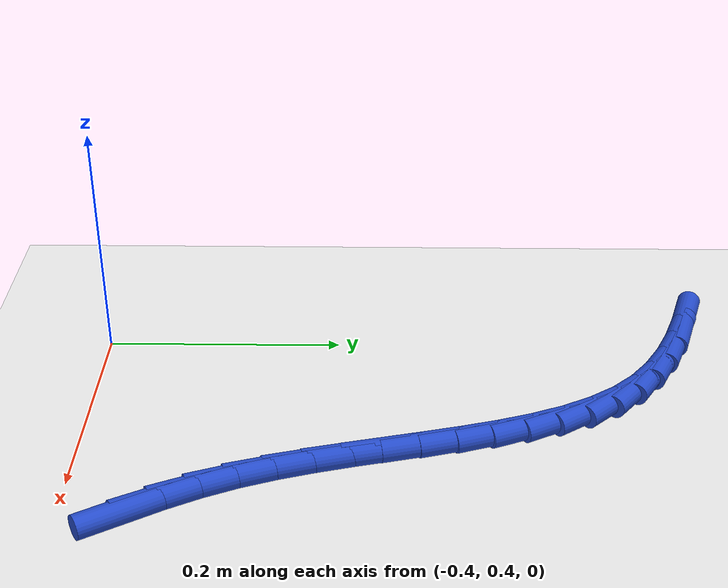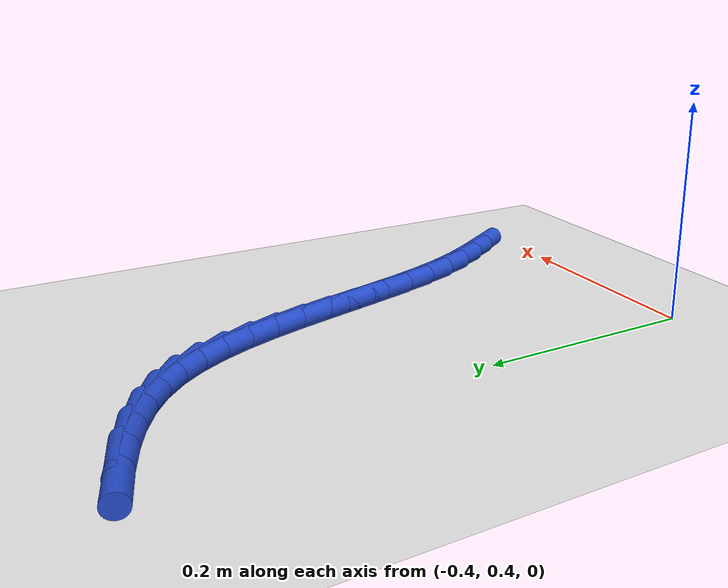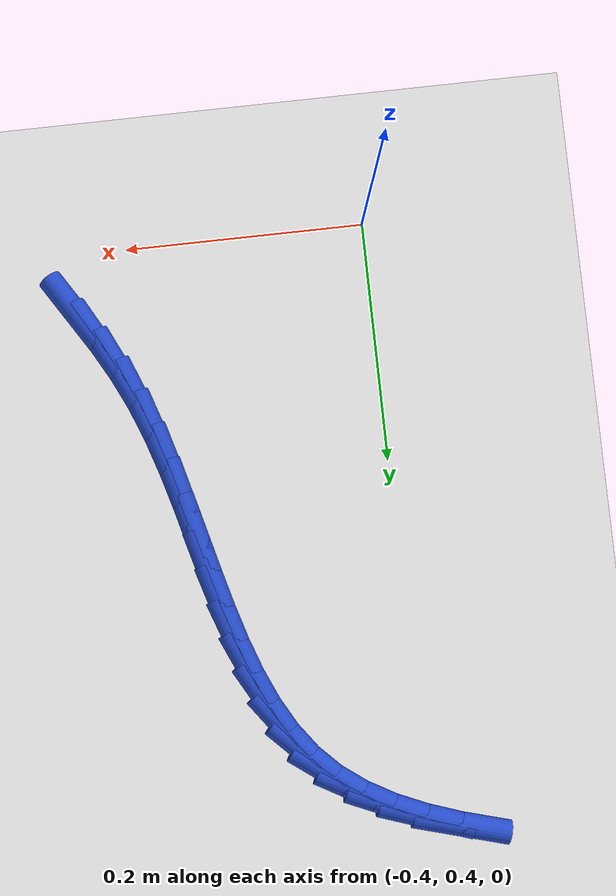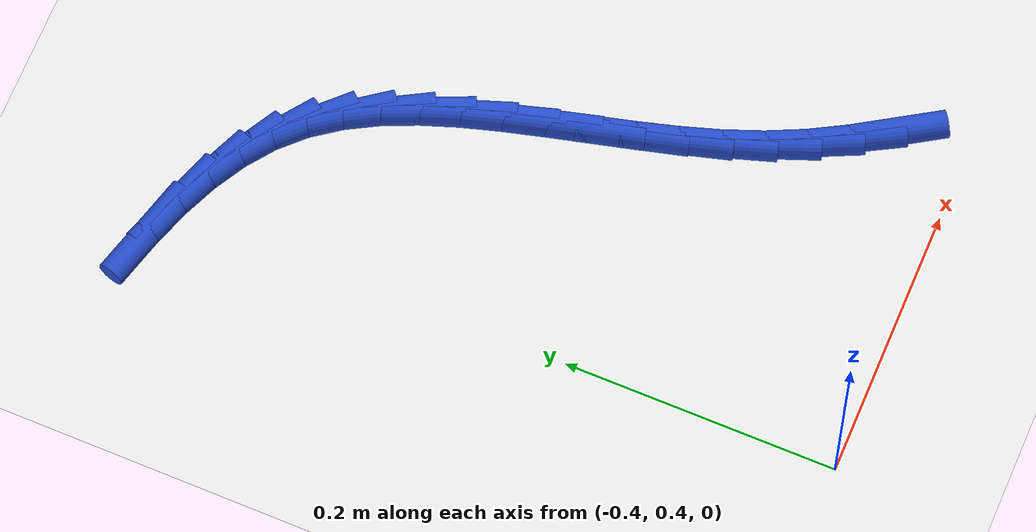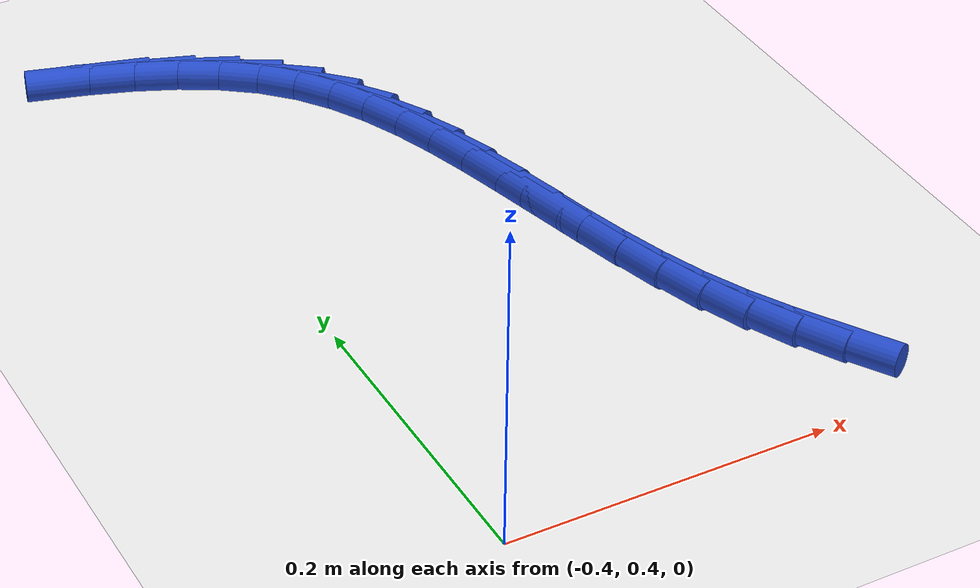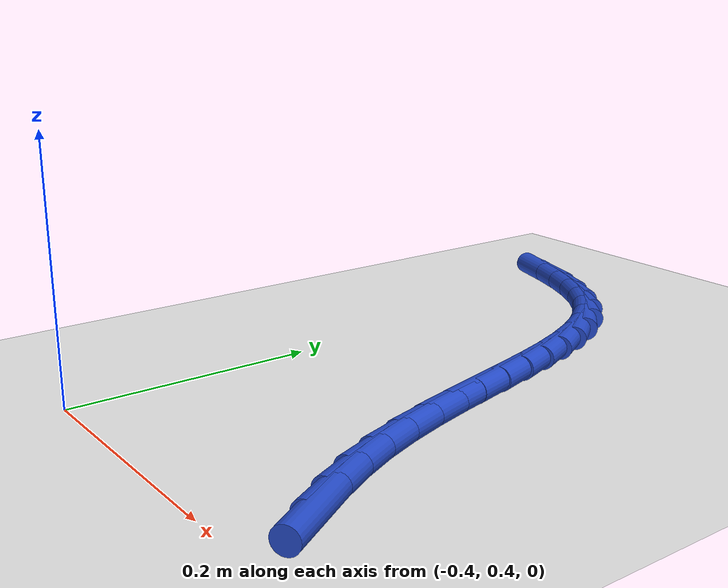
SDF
<sdf version="1.6">
 <world name="default">
  <model name="ground_plane">
   <static>1</static>
   <link name="link">
    <collision name="collision">
     <geometry><plane><normal>0 0 1</normal><size>100 100</size></plane></geometry>
     <surface><friction><ode><mu>100</mu><mu2>50</mu2></ode></friction></surface>
    </collision>
    <visual name="visual">
     <cast_shadows>0</cast_shadows>
     <geometry><plane><normal>0 0 1</normal><size>100 100</size></plane></geometry>
     <material>
      <script><uri>file://media/materials/scripts/gazebo.material</uri><name>Gazebo/WhiteGlow</name></script>
     </material>
    </visual>
   </link>
  </model>
  <model name="line">
   <link name="link_17">
    <pose>-0.15675739642516137 0.45418025724158056 0.01 0 1.57 -1.0133619687625222</pose>
    <collision name="collision">
     <geometry><cylinder><radius>0.01</radius><length>0.08</length></cylinder></geometry>
    </collision>
    <visual name="visual">
     <material>
      <script><name>Gazebo/Blue</name><uri>file://media/materials/scripts/gazebo.material</uri></script>
     </material>
     <geometry><cylinder><radius>0.01</radius><length>0.08</length></cylinder></geometry>
    </visual>
   </link>
   <link name="link_18">
    <pose>-0.17239241803405053 0.4792612552451187 0.01 0 1.57 -1.0668688279705607</pose>
    <collision name="collision">
     <geometry><cylinder><radius>0.01</radius><length>0.08</length></cylinder></geometry>
    </collision>
    <visual name="visual">
     <material>
      <script><name>Gazebo/Blue</name><uri>file://media/materials/scripts/gazebo.material</uri></script>
     </material>
     <geometry><cylinder><radius>0.01</radius><length>0.08</length></cylinder></geometry>
    </visual>
   </link>
   <link name="link_19">
    <pose>-0.1867395980737762 0.5052801860688079 0.01 0 1.57 -1.134840986003388</pose>
    <collision name="collision">
     <geometry><cylinder><radius>0.01</radius><length>0.08</length></cylinder></geometry>
    </collision>
    <visual name="visual">
     <material>
      <script><name>Gazebo/Blue</name><uri>file://media/materials/scripts/gazebo.material</uri></script>
     </material>
     <geometry><cylinder><radius>0.01</radius><length>0.08</length></cylinder></geometry>
    </visual>
   </link>
   <link name="link_20">
    <pose>-0.1994030000032319 0.5324636885692487 0.01 0 1.57 -1.2069468422055816</pose>
    <collision name="collision">
     <geometry><cylinder><radius>0.01</radius><length>0.08</length></cylinder></geometry>
    </collision>
    <visual name="visual">
     <material>
      <script><name>Gazebo/Blue</name><uri>file://media/materials/scripts/gazebo.material</uri></script>
     </material>
     <geometry><cylinder><radius>0.01</radius><length>0.08</length></cylinder></geometry>
    </visual>
   </link>
   <link name="link_21">
    <pose>-0.21022101664508128 0.5608720378528336 0.01 0 1.57 -1.2625666835470688</pose>
    <collision name="collision">
     <geometry><cylinder><radius>0.01</radius><length>0.08</length></cylinder></geometry>
    </collision>
    <visual name="visual">
     <material>
      <script><name>Gazebo/Blue</name><uri>file://media/materials/scripts/gazebo.material</uri></script>
     </material>
     <geometry><cylinder><radius>0.01</radius><length>0.08</length></cylinder></geometry>
    </visual>
   </link>
   <link name="link_22">
    <pose>-0.2195562369697719 0.5901933523504638 0.01 0 1.57 -1.3002098207081696</pose>
    <collision name="collision">
     <geometry><cylinder><radius>0.01</radius><length>0.08</length></cylinder></geometry>
    </collision>
    <visual name="visual">
     <material>
      <script><name>Gazebo/Blue</name><uri>file://media/materials/scripts/gazebo.material</uri></script>
     </material>
     <geometry><cylinder><radius>0.01</radius><length>0.08</length></cylinder></geometry>
    </visual>
   </link>
   <link name="link_23">
    <pose>-0.22784239092838027 0.620065243462506 0.01 0 1.57 -1.320945639653934</pose>
    <collision name="collision">
     <geometry><cylinder><radius>0.01</radius><length>0.08</length></cylinder></geometry>
    </collision>
    <visual name="visual">
     <material>
      <script><name>Gazebo/Blue</name><uri>file://media/materials/scripts/gazebo.material</uri></script>
     </material>
     <geometry><cylinder><radius>0.01</radius><length>0.08</length></cylinder></geometry>
    </visual>
   </link>
   <link name="link_24">
    <pose>-0.23551320847198332 0.650125322589328 0.01 0 1.57 -1.3252590220329108</pose>
    <collision name="collision">
     <geometry><cylinder><radius>0.01</radius><length>0.08</length></cylinder></geometry>
    </collision>
    <visual name="visual">
     <material>
      <script><name>Gazebo/Blue</name><uri>file://media/materials/scripts/gazebo.material</uri></script>
     </material>
     <geometry><cylinder><radius>0.01</radius><length>0.08</length></cylinder></geometry>
    </visual>
   </link>
   <link name="link_25">
    <pose>-0.24300241955165755 0.6800112011312963 0.01 0 1.57 -1.3129042982043717</pose>
    <collision name="collision">
     <geometry><cylinder><radius>0.01</radius><length>0.08</length></cylinder></geometry>
    </collision>
    <visual name="visual">
     <material>
      <script><name>Gazebo/Blue</name><uri>file://media/materials/scripts/gazebo.material</uri></script>
     </material>
     <geometry><cylinder><radius>0.01</radius><length>0.08</length></cylinder></geometry>
    </visual>
   </link>
   <link name="link_26">
    <pose>-0.2507437541184798 0.7093604904887786 0.01 0 1.57 -1.282822759139228</pose>
    <collision name="collision">
     <geometry><cylinder><radius>0.01</radius><length>0.08</length></cylinder></geometry>
    </collision>
    <visual name="visual">
     <material>
      <script><name>Gazebo/Blue</name><uri>file://media/materials/scripts/gazebo.material</uri></script>
     </material>
     <geometry><cylinder><radius>0.01</radius><length>0.08</length></cylinder></geometry>
    </visual>
   </link>
   <link name="link_27">
    <pose>-0.25917094212352665 0.7378108020621414 0.01 0 1.57 -1.2331178961608336</pose>
    <collision name="collision">
     <geometry><cylinder><radius>0.01</radius><length>0.08</length></cylinder></geometry>
    </collision>
    <visual name="visual">
     <material>
      <script><name>Gazebo/Blue</name><uri>file://media/materials/scripts/gazebo.material</uri></script>
     </material>
     <geometry><cylinder><radius>0.01</radius><length>0.08</length></cylinder></geometry>
    </visual>
   </link>
   <link name="link_28">
    <pose>-0.268717713517875 0.7649997472517527 0.01 0 1.57 -1.1611696343551625</pose>
    <collision name="collision">
     <geometry><cylinder><radius>0.01</radius><length>0.08</length></cylinder></geometry>
    </collision>
    <visual name="visual">
     <material>
      <script><name>Gazebo/Blue</name><uri>file://media/materials/scripts/gazebo.material</uri></script>
     </material>
     <geometry><cylinder><radius>0.01</radius><length>0.08</length></cylinder></geometry>
    </visual>
   </link>
   <link name="link_29">
    <pose>-0.27981779825260134 0.7905649374579788 0.01 0 1.57 -1.0640979018220516</pose>
    <collision name="collision">
     <geometry><cylinder><radius>0.01</radius><length>0.08</length></cylinder></geometry>
    </collision>
    <visual name="visual">
     <material>
      <script><name>Gazebo/Blue</name><uri>file://media/materials/scripts/gazebo.material</uri></script>
     </material>
     <geometry><cylinder><radius>0.01</radius><length>0.08</length></cylinder></geometry>
    </visual>
   </link>
   <link name="link_30">
    <pose>-0.2929049262787825 0.8141439840811872 0.01 0 1.57 -0.9399228599757675</pose>
    <collision name="collision">
     <geometry><cylinder><radius>0.01</radius><length>0.08</length></cylinder></geometry>
    </collision>
    <visual name="visual">
     <material>
      <script><name>Gazebo/Blue</name><uri>file://media/materials/scripts/gazebo.material</uri></script>
     </material>
     <geometry><cylinder><radius>0.01</radius><length>0.08</length></cylinder></geometry>
    </visual>
   </link>
   <link name="link_31">
    <pose>-0.3084128275474951 0.8353744985217452 0.01 0 1.57 -0.7903698727182531</pose>
    <collision name="collision">
     <geometry><cylinder><radius>0.01</radius><length>0.08</length></cylinder></geometry>
    </collision>
    <visual name="visual">
     <material>
      <script><name>Gazebo/Blue</name><uri>file://media/materials/scripts/gazebo.material</uri></script>
     </material>
     <geometry><cylinder><radius>0.01</radius><length>0.08</length></cylinder></geometry>
    </visual>
   </link>
   <link name="link_32">
    <pose>-0.3267611357591894 0.8539061647568917 0.01 0 1.57 -0.6399078186234167</pose>
    <collision name="collision">
     <geometry><cylinder><radius>0.01</radius><length>0.08</length></cylinder></geometry>
    </collision>
    <visual name="visual">
     <material>
      <script><name>Gazebo/Blue</name><uri>file://media/materials/scripts/gazebo.material</uri></script>
     </material>
     <geometry><cylinder><radius>0.01</radius><length>0.08</length></cylinder></geometry>
    </visual>
   </link>
   <link name="link_33">
    <pose>-0.34799295417193726 0.8697111420681786 0.01 0 1.57 -0.5136813415873034</pose>
    <collision name="collision">
     <geometry><cylinder><radius>0.01</radius><length>0.08</length></cylinder></geometry>
    </collision>
    <visual name="visual">
     <material>
      <script><name>Gazebo/Blue</name><uri>file://media/materials/scripts/gazebo.material</uri></script>
     </material>
     <geometry><cylinder><radius>0.01</radius><length>0.08</length></cylinder></geometry>
    </visual>
   </link>
   <link name="link_34">
    <pose>-0.3717432709224275 0.8831111153880724 0.01 0 1.57 -0.4127401987999664</pose>
    <collision name="collision">
     <geometry><cylinder><radius>0.01</radius><length>0.08</length></cylinder></geometry>
    </collision>
    <visual name="visual">
     <material>
      <script><name>Gazebo/Blue</name><uri>file://media/materials/scripts/gazebo.material</uri></script>
     </material>
     <geometry><cylinder><radius>0.01</radius><length>0.08</length></cylinder></geometry>
    </visual>
   </link>
   <link name="link_35">
    <pose>-0.3976266481096563 0.8944452633015562 0.01 0 1.57 -0.33463089188393325</pose>
    <collision name="collision">
     <geometry><cylinder><radius>0.01</radius><length>0.08</length></cylinder></geometry>
    </collision>
    <visual name="visual">
     <material>
      <script><name>Gazebo/Blue</name><uri>file://media/materials/scripts/gazebo.material</uri></script>
     </material>
     <geometry><cylinder><radius>0.01</radius><length>0.08</length></cylinder></geometry>
    </visual>
   </link>
   <link name="link_36">
    <pose>-0.42525764783262 0.9040527643936135 0.01 0 1.57 -0.2762661418907046</pose>
    <collision name="collision">
     <geometry><cylinder><radius>0.01</radius><length>0.08</length></cylinder></geometry>
    </collision>
    <visual name="visual">
     <material>
      <script><name>Gazebo/Blue</name><uri>file://media/materials/scripts/gazebo.material</uri></script>
     </material>
     <geometry><cylinder><radius>0.01</radius><length>0.08</length></cylinder></geometry>
    </visual>
   </link>
  </model>
 </world>
</sdf>
